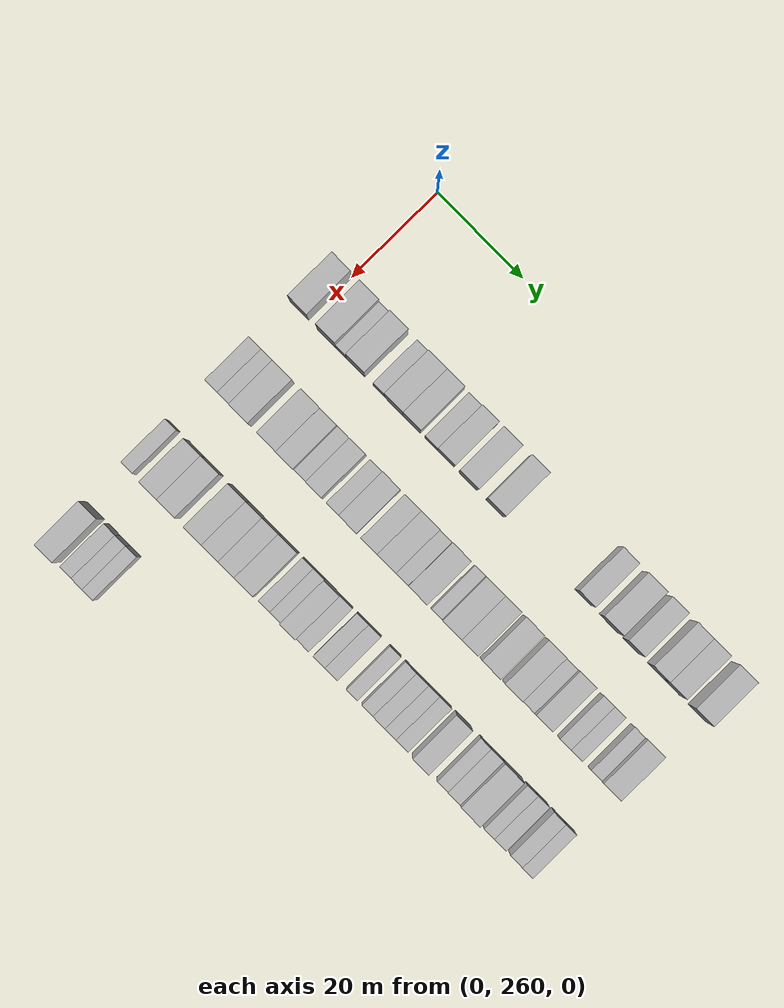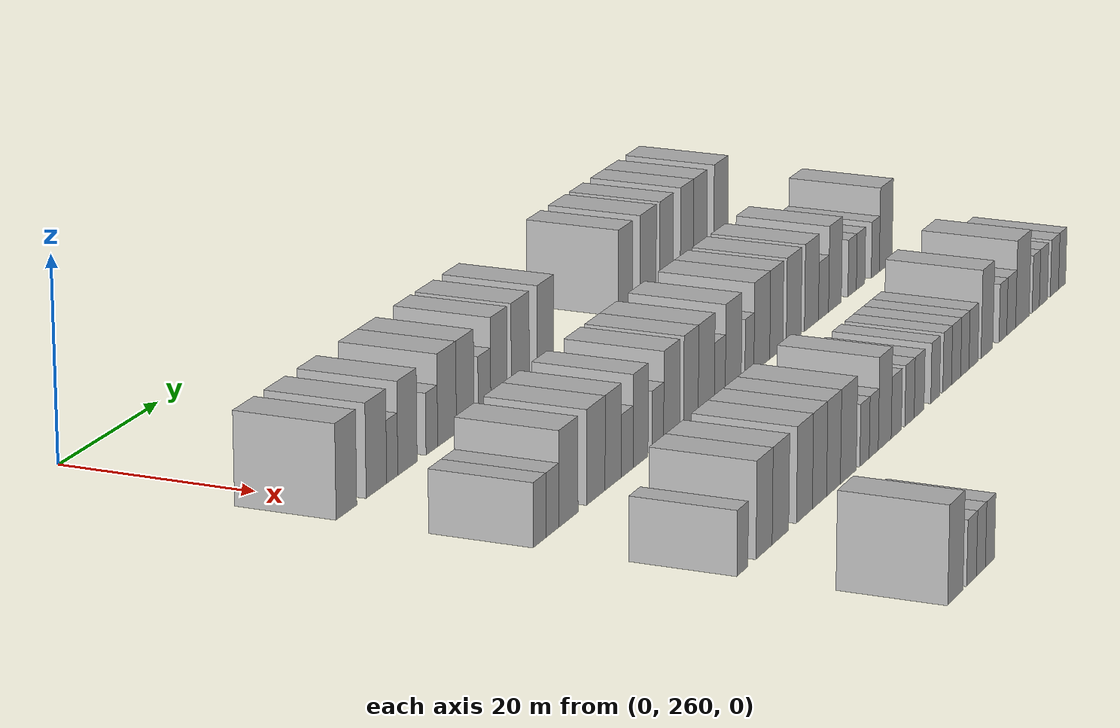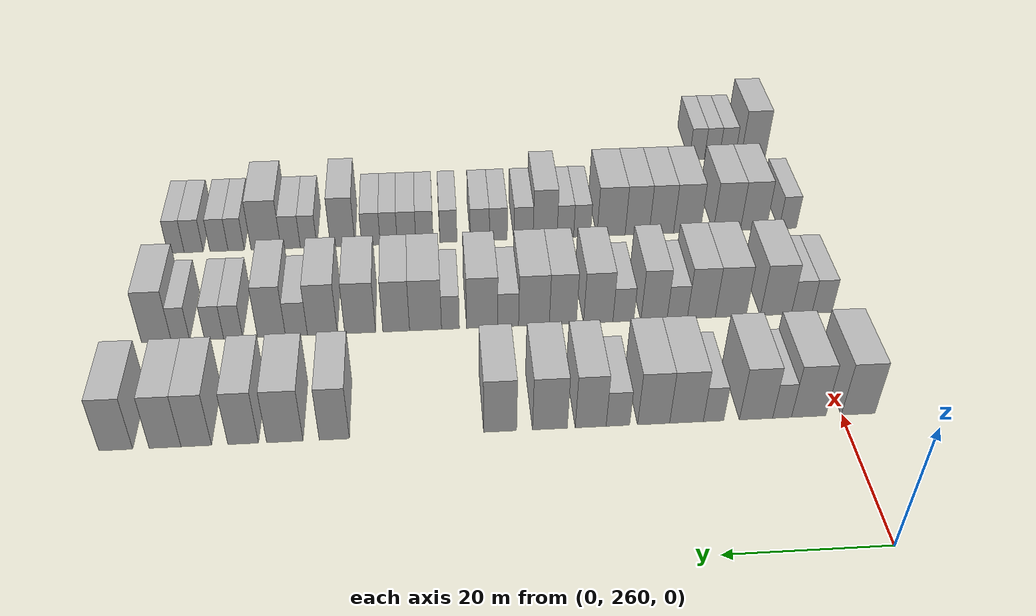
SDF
<sdf version="1.6">
 <world name="default">
  <model name="building_156">
   <static>1</static>
   <pose>25.0000 257.9217 0 0.000000 0.000000 0.000000</pose>
   <link name="link">
    <pose>0 0 4.50 0 0 0</pose>
    <collision name="collision"><geometry><box><size>10.0000 4.3431 9.0000</size></box></geometry></collision>
    <visual name="visual">
     <cast_shadows>0</cast_shadows>
     <geometry><box><size>10.0000 4.3431 9.0000</size></box></geometry>
     <material>
      <script>
       <uri>model://HANNAS_wall/materials/scripts</uri>
       <uri>model://HANNAS_wall/materials/textures</uri>
       <name>vrc/HANNAS_wall</name>
      </script>
     </material>
    </visual>
   </link>
  </model>
  <model name="building_157">
   <static>1</static>
   <pose>25.0000 264.3095 0 0.000000 0.000000 0.000000</pose>
   <link name="link">
    <pose>0 0 4.50 0 0 0</pose>
    <collision name="collision"><geometry><box><size>10.0000 4.4326 9.0000</size></box></geometry></collision>
    <visual name="visual">
     <cast_shadows>0</cast_shadows>
     <geometry><box><size>10.0000 4.4326 9.0000</size></box></geometry>
     <material>
      <script>
       <uri>model://HANNAS_wall/materials/scripts</uri>
       <uri>model://HANNAS_wall/materials/textures</uri>
       <name>vrc/HANNAS_wall</name>
      </script>
     </material>
    </visual>
   </link>
  </model>
  <model name="building_158">
   <static>1</static>
   <pose>25.0000 267.7391 0 0.000000 0.000000 0.000000</pose>
   <link name="link">
    <pose>0 0 3.00 0 0 0</pose>
    <collision name="collision"><geometry><box><size>10.0000 2.4265 6.0000</size></box></geometry></collision>
    <visual name="visual">
     <cast_shadows>0</cast_shadows>
     <geometry><box><size>10.0000 2.4265 6.0000</size></box></geometry>
     <material>
      <script>
       <uri>model://HANNAS_wall/materials/scripts</uri>
       <uri>model://HANNAS_wall/materials/textures</uri>
       <name>vrc/HANNAS_wall</name>
      </script>
     </material>
    </visual>
   </link>
  </model>
  <model name="building_159">
   <static>1</static>
   <pose>25.0000 271.0859 0 0.000000 0.000000 0.000000</pose>
   <link name="link">
    <pose>0 0 4.50 0 0 0</pose>
    <collision name="collision"><geometry><box><size>10.0000 4.2671 9.0000</size></box></geometry></collision>
    <visual name="visual">
     <cast_shadows>0</cast_shadows>
     <geometry><box><size>10.0000 4.2671 9.0000</size></box></geometry>
     <material>
      <script>
       <uri>model://HANNAS_wall/materials/scripts</uri>
       <uri>model://HANNAS_wall/materials/textures</uri>
       <name>vrc/HANNAS_wall</name>
      </script>
     </material>
    </visual>
   </link>
  </model>
  <model name="building_160">
   <static>1</static>
   <pose>25.0000 276.5340 0 0.000000 0.000000 0.000000</pose>
   <link name="link">
    <pose>0 0 3.00 0 0 0</pose>
    <collision name="collision"><geometry><box><size>10.0000 2.6290 6.0000</size></box></geometry></collision>
    <visual name="visual">
     <cast_shadows>0</cast_shadows>
     <geometry><box><size>10.0000 2.6290 6.0000</size></box></geometry>
     <material>
      <script>
       <uri>model://HANNAS_wall/materials/scripts</uri>
       <uri>model://HANNAS_wall/materials/textures</uri>
       <name>vrc/HANNAS_wall</name>
      </script>
     </material>
    </visual>
   </link>
  </model>
  <model name="building_161">
   <static>1</static>
   <pose>25.0000 279.9930 0 0.000000 0.000000 0.000000</pose>
   <link name="link">
    <pose>0 0 4.50 0 0 0</pose>
    <collision name="collision"><geometry><box><size>10.0000 4.2890 9.0000</size></box></geometry></collision>
    <visual name="visual">
     <cast_shadows>0</cast_shadows>
     <geometry><box><size>10.0000 4.2890 9.0000</size></box></geometry>
     <material>
      <script>
       <uri>model://HANNAS_wall/materials/scripts</uri>
       <uri>model://HANNAS_wall/materials/textures</uri>
       <name>vrc/HANNAS_wall</name>
      </script>
     </material>
    </visual>
   </link>
  </model>
  <model name="building_162">
   <static>1</static>
   <pose>25.0000 284.1789 0 0.000000 0.000000 0.000000</pose>
   <link name="link">
    <pose>0 0 4.50 0 0 0</pose>
    <collision name="collision"><geometry><box><size>10.0000 4.0828 9.0000</size></box></geometry></collision>
    <visual name="visual">
     <cast_shadows>0</cast_shadows>
     <geometry><box><size>10.0000 4.0828 9.0000</size></box></geometry>
     <material>
      <script>
       <uri>model://HANNAS_wall/materials/scripts</uri>
       <uri>model://HANNAS_wall/materials/textures</uri>
       <name>vrc/HANNAS_wall</name>
      </script>
     </material>
    </visual>
   </link>
  </model>
  <model name="building_163">
   <static>1</static>
   <pose>25.0000 288.7128 0 0.000000 0.000000 0.000000</pose>
   <link name="link">
    <pose>0 0 3.00 0 0 0</pose>
    <collision name="collision"><geometry><box><size>10.0000 2.9850 6.0000</size></box></geometry></collision>
    <visual name="visual">
     <cast_shadows>0</cast_shadows>
     <geometry><box><size>10.0000 2.9850 6.0000</size></box></geometry>
     <material>
      <script>
       <uri>model://HANNAS_wall/materials/scripts</uri>
       <uri>model://HANNAS_wall/materials/textures</uri>
       <name>vrc/HANNAS_wall</name>
      </script>
     </material>
    </visual>
   </link>
  </model>
  <model name="building_164">
   <static>1</static>
   <pose>25.0000 292.1604 0 0.000000 0.000000 0.000000</pose>
   <link name="link">
    <pose>0 0 4.50 0 0 0</pose>
    <collision name="collision"><geometry><box><size>10.0000 3.9103 9.0000</size></box></geometry></collision>
    <visual name="visual">
     <cast_shadows>0</cast_shadows>
     <geometry><box><size>10.0000 3.9103 9.0000</size></box></geometry>
     <material>
      <script>
       <uri>model://HANNAS_wall/materials/scripts</uri>
       <uri>model://HANNAS_wall/materials/textures</uri>
       <name>vrc/HANNAS_wall</name>
      </script>
     </material>
    </visual>
   </link>
  </model>
  <model name="building_165">
   <static>1</static>
   <pose>25.0000 297.3130 0 0.000000 0.000000 0.000000</pose>
   <link name="link">
    <pose>0 0 4.50 0 0 0</pose>
    <collision name="collision"><geometry><box><size>10.0000 4.3949 9.0000</size></box></geometry></collision>
    <visual name="visual">
     <cast_shadows>0</cast_shadows>
     <geometry><box><size>10.0000 4.3949 9.0000</size></box></geometry>
     <material>
      <script>
       <uri>model://HANNAS_wall/materials/scripts</uri>
       <uri>model://HANNAS_wall/materials/textures</uri>
       <name>vrc/HANNAS_wall</name>
      </script>
     </material>
    </visual>
   </link>
  </model>
  <model name="building_166">
   <static>1</static>
   <pose>25.0000 303.5803 0 0.000000 0.000000 0.000000</pose>
   <link name="link">
    <pose>0 0 4.50 0 0 0</pose>
    <collision name="collision"><geometry><box><size>10.0000 4.1397 9.0000</size></box></geometry></collision>
    <visual name="visual">
     <cast_shadows>0</cast_shadows>
     <geometry><box><size>10.0000 4.1397 9.0000</size></box></geometry>
     <material>
      <script>
       <uri>model://HANNAS_wall/materials/scripts</uri>
       <uri>model://HANNAS_wall/materials/textures</uri>
       <name>vrc/HANNAS_wall</name>
      </script>
     </material>
    </visual>
   </link>
  </model>
  <model name="building_167">
   <static>1</static>
   <pose>25.0000 324.2522 0 0.000000 0.000000 0.000000</pose>
   <link name="link">
    <pose>0 0 4.50 0 0 0</pose>
    <collision name="collision"><geometry><box><size>10.0000 3.7346 9.0000</size></box></geometry></collision>
    <visual name="visual">
     <cast_shadows>0</cast_shadows>
     <geometry><box><size>10.0000 3.7346 9.0000</size></box></geometry>
     <material>
      <script>
       <uri>model://HANNAS_wall/materials/scripts</uri>
       <uri>model://HANNAS_wall/materials/textures</uri>
       <name>vrc/HANNAS_wall</name>
      </script>
     </material>
    </visual>
   </link>
  </model>
  <model name="building_168">
   <static>1</static>
   <pose>25.0000 330.3652 0 0.000000 0.000000 0.000000</pose>
   <link name="link">
    <pose>0 0 4.50 0 0 0</pose>
    <collision name="collision"><geometry><box><size>10.0000 4.4914 9.0000</size></box></geometry></collision>
    <visual name="visual">
     <cast_shadows>0</cast_shadows>
     <geometry><box><size>10.0000 4.4914 9.0000</size></box></geometry>
     <material>
      <script>
       <uri>model://HANNAS_wall/materials/scripts</uri>
       <uri>model://HANNAS_wall/materials/textures</uri>
       <name>vrc/HANNAS_wall</name>
      </script>
     </material>
    </visual>
   </link>
  </model>
  <model name="building_169">
   <static>1</static>
   <pose>25.0000 335.4946 0 0.000000 0.000000 0.000000</pose>
   <link name="link">
    <pose>0 0 4.50 0 0 0</pose>
    <collision name="collision"><geometry><box><size>10.0000 3.7673 9.0000</size></box></geometry></collision>
    <visual name="visual">
     <cast_shadows>0</cast_shadows>
     <geometry><box><size>10.0000 3.7673 9.0000</size></box></geometry>
     <material>
      <script>
       <uri>model://HANNAS_wall/materials/scripts</uri>
       <uri>model://HANNAS_wall/materials/textures</uri>
       <name>vrc/HANNAS_wall</name>
      </script>
     </material>
    </visual>
   </link>
  </model>
  <model name="building_170">
   <static>1</static>
   <pose>25.0000 341.2450 0 0.000000 0.000000 0.000000</pose>
   <link name="link">
    <pose>0 0 4.50 0 0 0</pose>
    <collision name="collision"><geometry><box><size>10.0000 3.7335 9.0000</size></box></geometry></collision>
    <visual name="visual">
     <cast_shadows>0</cast_shadows>
     <geometry><box><size>10.0000 3.7335 9.0000</size></box></geometry>
     <material>
      <script>
       <uri>model://HANNAS_wall/materials/scripts</uri>
       <uri>model://HANNAS_wall/materials/textures</uri>
       <name>vrc/HANNAS_wall</name>
      </script>
     </material>
    </visual>
   </link>
  </model>
  <model name="building_171">
   <static>1</static>
   <pose>25.0000 345.0590 0 0.000000 0.000000 0.000000</pose>
   <link name="link">
    <pose>0 0 4.50 0 0 0</pose>
    <collision name="collision"><geometry><box><size>10.0000 3.8945 9.0000</size></box></geometry></collision>
    <visual name="visual">
     <cast_shadows>0</cast_shadows>
     <geometry><box><size>10.0000 3.8945 9.0000</size></box></geometry>
     <material>
      <script>
       <uri>model://HANNAS_wall/materials/scripts</uri>
       <uri>model://HANNAS_wall/materials/textures</uri>
       <name>vrc/HANNAS_wall</name>
      </script>
     </material>
    </visual>
   </link>
  </model>
  <model name="building_172">
   <static>1</static>
   <pose>25.0000 351.0654 0 0.000000 0.000000 0.000000</pose>
   <link name="link">
    <pose>0 0 4.50 0 0 0</pose>
    <collision name="collision"><geometry><box><size>10.0000 4.1183 9.0000</size></box></geometry></collision>
    <visual name="visual">
     <cast_shadows>0</cast_shadows>
     <geometry><box><size>10.0000 4.1183 9.0000</size></box></geometry>
     <material>
      <script>
       <uri>model://HANNAS_wall/materials/scripts</uri>
       <uri>model://HANNAS_wall/materials/textures</uri>
       <name>vrc/HANNAS_wall</name>
      </script>
     </material>
    </visual>
   </link>
  </model>
  <model name="building_323">
   <static>1</static>
   <pose>44.0000 257.0978 0 0.000000 0.000000 0.000000</pose>
   <link name="link">
    <pose>0 0 3.00 0 0 0</pose>
    <collision name="collision"><geometry><box><size>10.0000 2.8605 6.0000</size></box></geometry></collision>
    <visual name="visual">
     <cast_shadows>0</cast_shadows>
     <geometry><box><size>10.0000 2.8605 6.0000</size></box></geometry>
     <material>
      <script>
       <uri>model://HANNAS_wall/materials/scripts</uri>
       <uri>model://HANNAS_wall/materials/textures</uri>
       <name>vrc/HANNAS_wall</name>
      </script>
     </material>
    </visual>
   </link>
  </model>
  <model name="building_324">
   <static>1</static>
   <pose>44.0000 259.9847 0 0.000000 0.000000 0.000000</pose>
   <link name="link">
    <pose>0 0 3.00 0 0 0</pose>
    <collision name="collision"><geometry><box><size>10.0000 2.9132 6.0000</size></box></geometry></collision>
    <visual name="visual">
     <cast_shadows>0</cast_shadows>
     <geometry><box><size>10.0000 2.9132 6.0000</size></box></geometry>
     <material>
      <script>
       <uri>model://HANNAS_wall/materials/scripts</uri>
       <uri>model://HANNAS_wall/materials/textures</uri>
       <name>vrc/HANNAS_wall</name>
      </script>
     </material>
    </visual>
   </link>
  </model>
  <model name="building_325">
   <static>1</static>
   <pose>44.0000 263.6430 0 0.000000 0.000000 0.000000</pose>
   <link name="link">
    <pose>0 0 4.50 0 0 0</pose>
    <collision name="collision"><geometry><box><size>10.0000 4.4034 9.0000</size></box></geometry></collision>
    <visual name="visual">
     <cast_shadows>0</cast_shadows>
     <geometry><box><size>10.0000 4.4034 9.0000</size></box></geometry>
     <material>
      <script>
       <uri>model://HANNAS_wall/materials/scripts</uri>
       <uri>model://HANNAS_wall/materials/textures</uri>
       <name>vrc/HANNAS_wall</name>
      </script>
     </material>
    </visual>
   </link>
  </model>
  <model name="building_326">
   <static>1</static>
   <pose>44.0000 270.0319 0 0.000000 0.000000 0.000000</pose>
   <link name="link">
    <pose>0 0 4.50 0 0 0</pose>
    <collision name="collision"><geometry><box><size>10.0000 4.3744 9.0000</size></box></geometry></collision>
    <visual name="visual">
     <cast_shadows>0</cast_shadows>
     <geometry><box><size>10.0000 4.3744 9.0000</size></box></geometry>
     <material>
      <script>
       <uri>model://HANNAS_wall/materials/scripts</uri>
       <uri>model://HANNAS_wall/materials/textures</uri>
       <name>vrc/HANNAS_wall</name>
      </script>
     </material>
    </visual>
   </link>
  </model>
  <model name="building_327">
   <static>1</static>
   <pose>44.0000 274.1788 0 0.000000 0.000000 0.000000</pose>
   <link name="link">
    <pose>0 0 4.50 0 0 0</pose>
    <collision name="collision"><geometry><box><size>10.0000 3.9193 9.0000</size></box></geometry></collision>
    <visual name="visual">
     <cast_shadows>0</cast_shadows>
     <geometry><box><size>10.0000 3.9193 9.0000</size></box></geometry>
     <material>
      <script>
       <uri>model://HANNAS_wall/materials/scripts</uri>
       <uri>model://HANNAS_wall/materials/textures</uri>
       <name>vrc/HANNAS_wall</name>
      </script>
     </material>
    </visual>
   </link>
  </model>
  <model name="building_328">
   <static>1</static>
   <pose>44.0000 277.5630 0 0.000000 0.000000 0.000000</pose>
   <link name="link">
    <pose>0 0 3.00 0 0 0</pose>
    <collision name="collision"><geometry><box><size>10.0000 2.8491 6.0000</size></box></geometry></collision>
    <visual name="visual">
     <cast_shadows>0</cast_shadows>
     <geometry><box><size>10.0000 2.8491 6.0000</size></box></geometry>
     <material>
      <script>
       <uri>model://HANNAS_wall/materials/scripts</uri>
       <uri>model://HANNAS_wall/materials/textures</uri>
       <name>vrc/HANNAS_wall</name>
      </script>
     </material>
    </visual>
   </link>
  </model>
  <model name="building_329">
   <static>1</static>
   <pose>44.0000 280.8225 0 0.000000 0.000000 0.000000</pose>
   <link name="link">
    <pose>0 0 4.50 0 0 0</pose>
    <collision name="collision"><geometry><box><size>10.0000 3.6697 9.0000</size></box></geometry></collision>
    <visual name="visual">
     <cast_shadows>0</cast_shadows>
     <geometry><box><size>10.0000 3.6697 9.0000</size></box></geometry>
     <material>
      <script>
       <uri>model://HANNAS_wall/materials/scripts</uri>
       <uri>model://HANNAS_wall/materials/textures</uri>
       <name>vrc/HANNAS_wall</name>
      </script>
     </material>
    </visual>
   </link>
  </model>
  <model name="building_330">
   <static>1</static>
   <pose>44.0000 285.1174 0 0.000000 0.000000 0.000000</pose>
   <link name="link">
    <pose>0 0 3.00 0 0 0</pose>
    <collision name="collision"><geometry><box><size>10.0000 2.9201 6.0000</size></box></geometry></collision>
    <visual name="visual">
     <cast_shadows>0</cast_shadows>
     <geometry><box><size>10.0000 2.9201 6.0000</size></box></geometry>
     <material>
      <script>
       <uri>model://HANNAS_wall/materials/scripts</uri>
       <uri>model://HANNAS_wall/materials/textures</uri>
       <name>vrc/HANNAS_wall</name>
      </script>
     </material>
    </visual>
   </link>
  </model>
  <model name="building_331">
   <static>1</static>
   <pose>44.0000 288.6236 0 0.000000 0.000000 0.000000</pose>
   <link name="link">
    <pose>0 0 4.50 0 0 0</pose>
    <collision name="collision"><geometry><box><size>10.0000 4.0924 9.0000</size></box></geometry></collision>
    <visual name="visual">
     <cast_shadows>0</cast_shadows>
     <geometry><box><size>10.0000 4.0924 9.0000</size></box></geometry>
     <material>
      <script>
       <uri>model://HANNAS_wall/materials/scripts</uri>
       <uri>model://HANNAS_wall/materials/textures</uri>
       <name>vrc/HANNAS_wall</name>
      </script>
     </material>
    </visual>
   </link>
  </model>
  <model name="building_332">
   <static>1</static>
   <pose>44.0000 293.5521 0 0.000000 0.000000 0.000000</pose>
   <link name="link">
    <pose>0 0 4.50 0 0 0</pose>
    <collision name="collision"><geometry><box><size>10.0000 3.7646 9.0000</size></box></geometry></collision>
    <visual name="visual">
     <cast_shadows>0</cast_shadows>
     <geometry><box><size>10.0000 3.7646 9.0000</size></box></geometry>
     <material>
      <script>
       <uri>model://HANNAS_wall/materials/scripts</uri>
       <uri>model://HANNAS_wall/materials/textures</uri>
       <name>vrc/HANNAS_wall</name>
      </script>
     </material>
    </visual>
   </link>
  </model>
  <model name="building_333">
   <static>1</static>
   <pose>44.0000 297.5683 0 0.000000 0.000000 0.000000</pose>
   <link name="link">
    <pose>0 0 4.50 0 0 0</pose>
    <collision name="collision"><geometry><box><size>10.0000 4.2679 9.0000</size></box></geometry></collision>
    <visual name="visual">
     <cast_shadows>0</cast_shadows>
     <geometry><box><size>10.0000 4.2679 9.0000</size></box></geometry>
     <material>
      <script>
       <uri>model://HANNAS_wall/materials/scripts</uri>
       <uri>model://HANNAS_wall/materials/textures</uri>
       <name>vrc/HANNAS_wall</name>
      </script>
     </material>
    </visual>
   </link>
  </model>
  <model name="building_334">
   <static>1</static>
   <pose>44.0000 301.1412 0 0.000000 0.000000 0.000000</pose>
   <link name="link">
    <pose>0 0 3.00 0 0 0</pose>
    <collision name="collision"><geometry><box><size>10.0000 2.8778 6.0000</size></box></geometry></collision>
    <visual name="visual">
     <cast_shadows>0</cast_shadows>
     <geometry><box><size>10.0000 2.8778 6.0000</size></box></geometry>
     <material>
      <script>
       <uri>model://HANNAS_wall/materials/scripts</uri>
       <uri>model://HANNAS_wall/materials/textures</uri>
       <name>vrc/HANNAS_wall</name>
      </script>
     </material>
    </visual>
   </link>
  </model>
  <model name="building_335">
   <static>1</static>
   <pose>44.0000 304.7268 0 0.000000 0.000000 0.000000</pose>
   <link name="link">
    <pose>0 0 4.50 0 0 0</pose>
    <collision name="collision"><geometry><box><size>10.0000 4.2934 9.0000</size></box></geometry></collision>
    <visual name="visual">
     <cast_shadows>0</cast_shadows>
     <geometry><box><size>10.0000 4.2934 9.0000</size></box></geometry>
     <material>
      <script>
       <uri>model://HANNAS_wall/materials/scripts</uri>
       <uri>model://HANNAS_wall/materials/textures</uri>
       <name>vrc/HANNAS_wall</name>
      </script>
     </material>
    </visual>
   </link>
  </model>
  <model name="building_336">
   <static>1</static>
   <pose>44.0000 309.1063 0 0.000000 0.000000 0.000000</pose>
   <link name="link">
    <pose>0 0 3.00 0 0 0</pose>
    <collision name="collision"><geometry><box><size>10.0000 2.4656 6.0000</size></box></geometry></collision>
    <visual name="visual">
     <cast_shadows>0</cast_shadows>
     <geometry><box><size>10.0000 2.4656 6.0000</size></box></geometry>
     <material>
      <script>
       <uri>model://HANNAS_wall/materials/scripts</uri>
       <uri>model://HANNAS_wall/materials/textures</uri>
       <name>vrc/HANNAS_wall</name>
      </script>
     </material>
    </visual>
   </link>
  </model>
  <model name="building_337">
   <static>1</static>
   <pose>44.0000 312.5349 0 0.000000 0.000000 0.000000</pose>
   <link name="link">
    <pose>0 0 4.50 0 0 0</pose>
    <collision name="collision"><geometry><box><size>10.0000 4.3915 9.0000</size></box></geometry></collision>
    <visual name="visual">
     <cast_shadows>0</cast_shadows>
     <geometry><box><size>10.0000 4.3915 9.0000</size></box></geometry>
     <material>
      <script>
       <uri>model://HANNAS_wall/materials/scripts</uri>
       <uri>model://HANNAS_wall/materials/textures</uri>
       <name>vrc/HANNAS_wall</name>
      </script>
     </material>
    </visual>
   </link>
  </model>
  <model name="building_338">
   <static>1</static>
   <pose>44.0000 316.5642 0 0.000000 0.000000 0.000000</pose>
   <link name="link">
    <pose>0 0 4.50 0 0 0</pose>
    <collision name="collision"><geometry><box><size>10.0000 3.6671 9.0000</size></box></geometry></collision>
    <visual name="visual">
     <cast_shadows>0</cast_shadows>
     <geometry><box><size>10.0000 3.6671 9.0000</size></box></geometry>
     <material>
      <script>
       <uri>model://HANNAS_wall/materials/scripts</uri>
       <uri>model://HANNAS_wall/materials/textures</uri>
       <name>vrc/HANNAS_wall</name>
      </script>
     </material>
    </visual>
   </link>
  </model>
  <model name="building_339">
   <static>1</static>
   <pose>44.0000 321.5037 0 0.000000 0.000000 0.000000</pose>
   <link name="link">
    <pose>0 0 4.50 0 0 0</pose>
    <collision name="collision"><geometry><box><size>10.0000 4.2120 9.0000</size></box></geometry></collision>
    <visual name="visual">
     <cast_shadows>0</cast_shadows>
     <geometry><box><size>10.0000 4.2120 9.0000</size></box></geometry>
     <material>
      <script>
       <uri>model://HANNAS_wall/materials/scripts</uri>
       <uri>model://HANNAS_wall/materials/textures</uri>
       <name>vrc/HANNAS_wall</name>
      </script>
     </material>
    </visual>
   </link>
  </model>
  <model name="building_340">
   <static>1</static>
   <pose>44.0000 326.6484 0 0.000000 0.000000 0.000000</pose>
   <link name="link">
    <pose>0 0 4.50 0 0 0</pose>
    <collision name="collision"><geometry><box><size>10.0000 4.0774 9.0000</size></box></geometry></collision>
    <visual name="visual">
     <cast_shadows>0</cast_shadows>
     <geometry><box><size>10.0000 4.0774 9.0000</size></box></geometry>
     <material>
      <script>
       <uri>model://HANNAS_wall/materials/scripts</uri>
       <uri>model://HANNAS_wall/materials/textures</uri>
       <name>vrc/HANNAS_wall</name>
      </script>
     </material>
    </visual>
   </link>
  </model>
  <model name="building_341">
   <static>1</static>
   <pose>44.0000 330.1806 0 0.000000 0.000000 0.000000</pose>
   <link name="link">
    <pose>0 0 3.00 0 0 0</pose>
    <collision name="collision"><geometry><box><size>10.0000 2.9869 6.0000</size></box></geometry></collision>
    <visual name="visual">
     <cast_shadows>0</cast_shadows>
     <geometry><box><size>10.0000 2.9869 6.0000</size></box></geometry>
     <material>
      <script>
       <uri>model://HANNAS_wall/materials/scripts</uri>
       <uri>model://HANNAS_wall/materials/textures</uri>
       <name>vrc/HANNAS_wall</name>
      </script>
     </material>
    </visual>
   </link>
  </model>
  <model name="building_342">
   <static>1</static>
   <pose>44.0000 333.5824 0 0.000000 0.000000 0.000000</pose>
   <link name="link">
    <pose>0 0 4.50 0 0 0</pose>
    <collision name="collision"><geometry><box><size>10.0000 3.8167 9.0000</size></box></geometry></collision>
    <visual name="visual">
     <cast_shadows>0</cast_shadows>
     <geometry><box><size>10.0000 3.8167 9.0000</size></box></geometry>
     <material>
      <script>
       <uri>model://HANNAS_wall/materials/scripts</uri>
       <uri>model://HANNAS_wall/materials/textures</uri>
       <name>vrc/HANNAS_wall</name>
      </script>
     </material>
    </visual>
   </link>
  </model>
  <model name="building_343">
   <static>1</static>
   <pose>44.0000 338.7766 0 0.000000 0.000000 0.000000</pose>
   <link name="link">
    <pose>0 0 3.00 0 0 0</pose>
    <collision name="collision"><geometry><box><size>10.0000 2.5716 6.0000</size></box></geometry></collision>
    <visual name="visual">
     <cast_shadows>0</cast_shadows>
     <geometry><box><size>10.0000 2.5716 6.0000</size></box></geometry>
     <material>
      <script>
       <uri>model://HANNAS_wall/materials/scripts</uri>
       <uri>model://HANNAS_wall/materials/textures</uri>
       <name>vrc/HANNAS_wall</name>
      </script>
     </material>
    </visual>
   </link>
  </model>
  <model name="building_344">
   <static>1</static>
   <pose>44.0000 341.3563 0 0.000000 0.000000 0.000000</pose>
   <link name="link">
    <pose>0 0 3.00 0 0 0</pose>
    <collision name="collision"><geometry><box><size>10.0000 2.5878 6.0000</size></box></geometry></collision>
    <visual name="visual">
     <cast_shadows>0</cast_shadows>
     <geometry><box><size>10.0000 2.5878 6.0000</size></box></geometry>
     <material>
      <script>
       <uri>model://HANNAS_wall/materials/scripts</uri>
       <uri>model://HANNAS_wall/materials/textures</uri>
       <name>vrc/HANNAS_wall</name>
      </script>
     </material>
    </visual>
   </link>
  </model>
  <model name="building_345">
   <static>1</static>
   <pose>44.0000 345.8887 0 0.000000 0.000000 0.000000</pose>
   <link name="link">
    <pose>0 0 3.00 0 0 0</pose>
    <collision name="collision"><geometry><box><size>10.0000 2.4772 6.0000</size></box></geometry></collision>
    <visual name="visual">
     <cast_shadows>0</cast_shadows>
     <geometry><box><size>10.0000 2.4772 6.0000</size></box></geometry>
     <material>
      <script>
       <uri>model://HANNAS_wall/materials/scripts</uri>
       <uri>model://HANNAS_wall/materials/textures</uri>
       <name>vrc/HANNAS_wall</name>
      </script>
     </material>
    </visual>
   </link>
  </model>
  <model name="building_346">
   <static>1</static>
   <pose>44.0000 349.1364 0 0.000000 0.000000 0.000000</pose>
   <link name="link">
    <pose>0 0 4.50 0 0 0</pose>
    <collision name="collision"><geometry><box><size>10.0000 4.0180 9.0000</size></box></geometry></collision>
    <visual name="visual">
     <cast_shadows>0</cast_shadows>
     <geometry><box><size>10.0000 4.0180 9.0000</size></box></geometry>
     <material>
      <script>
       <uri>model://HANNAS_wall/materials/scripts</uri>
       <uri>model://HANNAS_wall/materials/textures</uri>
       <name>vrc/HANNAS_wall</name>
      </script>
     </material>
    </visual>
   </link>
  </model>
  <model name="building_505">
   <static>1</static>
   <pose>63.0000 256.8940 0 0.000000 0.000000 0.000000</pose>
   <link name="link">
    <pose>0 0 3.00 0 0 0</pose>
    <collision name="collision"><geometry><box><size>10.0000 2.6488 6.0000</size></box></geometry></collision>
    <visual name="visual">
     <cast_shadows>0</cast_shadows>
     <geometry><box><size>10.0000 2.6488 6.0000</size></box></geometry>
     <material>
      <script>
       <uri>model://HANNAS_wall/materials/scripts</uri>
       <uri>model://HANNAS_wall/materials/textures</uri>
       <name>vrc/HANNAS_wall</name>
      </script>
     </material>
    </visual>
   </link>
  </model>
  <model name="building_506">
   <static>1</static>
   <pose>63.0000 262.2229 0 0.000000 0.000000 0.000000</pose>
   <link name="link">
    <pose>0 0 4.50 0 0 0</pose>
    <collision name="collision"><geometry><box><size>10.0000 4.0091 9.0000</size></box></geometry></collision>
    <visual name="visual">
     <cast_shadows>0</cast_shadows>
     <geometry><box><size>10.0000 4.0091 9.0000</size></box></geometry>
     <material>
      <script>
       <uri>model://HANNAS_wall/materials/scripts</uri>
       <uri>model://HANNAS_wall/materials/textures</uri>
       <name>vrc/HANNAS_wall</name>
      </script>
     </material>
    </visual>
   </link>
  </model>
  <model name="building_507">
   <static>1</static>
   <pose>63.0000 266.3112 0 0.000000 0.000000 0.000000</pose>
   <link name="link">
    <pose>0 0 4.50 0 0 0</pose>
    <collision name="collision"><geometry><box><size>10.0000 4.1674 9.0000</size></box></geometry></collision>
    <visual name="visual">
     <cast_shadows>0</cast_shadows>
     <geometry><box><size>10.0000 4.1674 9.0000</size></box></geometry>
     <material>
      <script>
       <uri>model://HANNAS_wall/materials/scripts</uri>
       <uri>model://HANNAS_wall/materials/textures</uri>
       <name>vrc/HANNAS_wall</name>
      </script>
     </material>
    </visual>
   </link>
  </model>
  <model name="building_508">
   <static>1</static>
   <pose>63.0000 272.4533 0 0.000000 0.000000 0.000000</pose>
   <link name="link">
    <pose>0 0 4.50 0 0 0</pose>
    <collision name="collision"><geometry><box><size>10.0000 4.1169 9.0000</size></box></geometry></collision>
    <visual name="visual">
     <cast_shadows>0</cast_shadows>
     <geometry><box><size>10.0000 4.1169 9.0000</size></box></geometry>
     <material>
      <script>
       <uri>model://HANNAS_wall/materials/scripts</uri>
       <uri>model://HANNAS_wall/materials/textures</uri>
       <name>vrc/HANNAS_wall</name>
      </script>
     </material>
    </visual>
   </link>
  </model>
  <model name="building_509">
   <static>1</static>
   <pose>63.0000 276.3806 0 0.000000 0.000000 0.000000</pose>
   <link name="link">
    <pose>0 0 4.50 0 0 0</pose>
    <collision name="collision"><geometry><box><size>10.0000 3.7378 9.0000</size></box></geometry></collision>
    <visual name="visual">
     <cast_shadows>0</cast_shadows>
     <geometry><box><size>10.0000 3.7378 9.0000</size></box></geometry>
     <material>
      <script>
       <uri>model://HANNAS_wall/materials/scripts</uri>
       <uri>model://HANNAS_wall/materials/textures</uri>
       <name>vrc/HANNAS_wall</name>
      </script>
     </material>
    </visual>
   </link>
  </model>
  <model name="building_510">
   <static>1</static>
   <pose>63.0000 280.0907 0 0.000000 0.000000 0.000000</pose>
   <link name="link">
    <pose>0 0 4.50 0 0 0</pose>
    <collision name="collision"><geometry><box><size>10.0000 3.6824 9.0000</size></box></geometry></collision>
    <visual name="visual">
     <cast_shadows>0</cast_shadows>
     <geometry><box><size>10.0000 3.6824 9.0000</size></box></geometry>
     <material>
      <script>
       <uri>model://HANNAS_wall/materials/scripts</uri>
       <uri>model://HANNAS_wall/materials/textures</uri>
       <name>vrc/HANNAS_wall</name>
      </script>
     </material>
    </visual>
   </link>
  </model>
  <model name="building_511">
   <static>1</static>
   <pose>63.0000 284.0763 0 0.000000 0.000000 0.000000</pose>
   <link name="link">
    <pose>0 0 4.50 0 0 0</pose>
    <collision name="collision"><geometry><box><size>10.0000 4.2889 9.0000</size></box></geometry></collision>
    <visual name="visual">
     <cast_shadows>0</cast_shadows>
     <geometry><box><size>10.0000 4.2889 9.0000</size></box></geometry>
     <material>
      <script>
       <uri>model://HANNAS_wall/materials/scripts</uri>
       <uri>model://HANNAS_wall/materials/textures</uri>
       <name>vrc/HANNAS_wall</name>
      </script>
     </material>
    </visual>
   </link>
  </model>
  <model name="building_512">
   <static>1</static>
   <pose>63.0000 288.5037 0 0.000000 0.000000 0.000000</pose>
   <link name="link">
    <pose>0 0 3.00 0 0 0</pose>
    <collision name="collision"><geometry><box><size>10.0000 2.5658 6.0000</size></box></geometry></collision>
    <visual name="visual">
     <cast_shadows>0</cast_shadows>
     <geometry><box><size>10.0000 2.5658 6.0000</size></box></geometry>
     <material>
      <script>
       <uri>model://HANNAS_wall/materials/scripts</uri>
       <uri>model://HANNAS_wall/materials/textures</uri>
       <name>vrc/HANNAS_wall</name>
      </script>
     </material>
    </visual>
   </link>
  </model>
  <model name="building_513">
   <static>1</static>
   <pose>63.0000 291.0500 0 0.000000 0.000000 0.000000</pose>
   <link name="link">
    <pose>0 0 3.00 0 0 0</pose>
    <collision name="collision"><geometry><box><size>10.0000 2.5268 6.0000</size></box></geometry></collision>
    <visual name="visual">
     <cast_shadows>0</cast_shadows>
     <geometry><box><size>10.0000 2.5268 6.0000</size></box></geometry>
     <material>
      <script>
       <uri>model://HANNAS_wall/materials/scripts</uri>
       <uri>model://HANNAS_wall/materials/textures</uri>
       <name>vrc/HANNAS_wall</name>
      </script>
     </material>
    </visual>
   </link>
  </model>
  <model name="building_514">
   <static>1</static>
   <pose>63.0000 294.1328 0 0.000000 0.000000 0.000000</pose>
   <link name="link">
    <pose>0 0 4.50 0 0 0</pose>
    <collision name="collision"><geometry><box><size>10.0000 3.6389 9.0000</size></box></geometry></collision>
    <visual name="visual">
     <cast_shadows>0</cast_shadows>
     <geometry><box><size>10.0000 3.6389 9.0000</size></box></geometry>
     <material>
      <script>
       <uri>model://HANNAS_wall/materials/scripts</uri>
       <uri>model://HANNAS_wall/materials/textures</uri>
       <name>vrc/HANNAS_wall</name>
      </script>
     </material>
    </visual>
   </link>
  </model>
  <model name="building_515">
   <static>1</static>
   <pose>63.0000 297.4019 0 0.000000 0.000000 0.000000</pose>
   <link name="link">
    <pose>0 0 3.00 0 0 0</pose>
    <collision name="collision"><geometry><box><size>10.0000 2.8992 6.0000</size></box></geometry></collision>
    <visual name="visual">
     <cast_shadows>0</cast_shadows>
     <geometry><box><size>10.0000 2.8992 6.0000</size></box></geometry>
     <material>
      <script>
       <uri>model://HANNAS_wall/materials/scripts</uri>
       <uri>model://HANNAS_wall/materials/textures</uri>
       <name>vrc/HANNAS_wall</name>
      </script>
     </material>
    </visual>
   </link>
  </model>
  <model name="building_516">
   <static>1</static>
   <pose>63.0000 301.2016 0 0.000000 0.000000 0.000000</pose>
   <link name="link">
    <pose>0 0 3.00 0 0 0</pose>
    <collision name="collision"><geometry><box><size>10.0000 2.7003 6.0000</size></box></geometry></collision>
    <visual name="visual">
     <cast_shadows>0</cast_shadows>
     <geometry><box><size>10.0000 2.7003 6.0000</size></box></geometry>
     <material>
      <script>
       <uri>model://HANNAS_wall/materials/scripts</uri>
       <uri>model://HANNAS_wall/materials/textures</uri>
       <name>vrc/HANNAS_wall</name>
      </script>
     </material>
    </visual>
   </link>
  </model>
  <model name="building_517">
   <static>1</static>
   <pose>63.0000 303.9911 0 0.000000 0.000000 0.000000</pose>
   <link name="link">
    <pose>0 0 3.00 0 0 0</pose>
    <collision name="collision"><geometry><box><size>10.0000 2.8787 6.0000</size></box></geometry></collision>
    <visual name="visual">
     <cast_shadows>0</cast_shadows>
     <geometry><box><size>10.0000 2.8787 6.0000</size></box></geometry>
     <material>
      <script>
       <uri>model://HANNAS_wall/materials/scripts</uri>
       <uri>model://HANNAS_wall/materials/textures</uri>
       <name>vrc/HANNAS_wall</name>
      </script>
     </material>
    </visual>
   </link>
  </model>
  <model name="building_518">
   <static>1</static>
   <pose>63.0000 308.7196 0 0.000000 0.000000 0.000000</pose>
   <link name="link">
    <pose>0 0 3.00 0 0 0</pose>
    <collision name="collision"><geometry><box><size>10.0000 2.5782 6.0000</size></box></geometry></collision>
    <visual name="visual">
     <cast_shadows>0</cast_shadows>
     <geometry><box><size>10.0000 2.5782 6.0000</size></box></geometry>
     <material>
      <script>
       <uri>model://HANNAS_wall/materials/scripts</uri>
       <uri>model://HANNAS_wall/materials/textures</uri>
       <name>vrc/HANNAS_wall</name>
      </script>
     </material>
    </visual>
   </link>
  </model>
  <model name="building_519">
   <static>1</static>
   <pose>63.0000 312.3083 0 0.000000 0.000000 0.000000</pose>
   <link name="link">
    <pose>0 0 3.00 0 0 0</pose>
    <collision name="collision"><geometry><box><size>10.0000 2.5994 6.0000</size></box></geometry></collision>
    <visual name="visual">
     <cast_shadows>0</cast_shadows>
     <geometry><box><size>10.0000 2.5994 6.0000</size></box></geometry>
     <material>
      <script>
       <uri>model://HANNAS_wall/materials/scripts</uri>
       <uri>model://HANNAS_wall/materials/textures</uri>
       <name>vrc/HANNAS_wall</name>
      </script>
     </material>
    </visual>
   </link>
  </model>
  <model name="building_520">
   <static>1</static>
   <pose>63.0000 315.0029 0 0.000000 0.000000 0.000000</pose>
   <link name="link">
    <pose>0 0 3.00 0 0 0</pose>
    <collision name="collision"><geometry><box><size>10.0000 2.7896 6.0000</size></box></geometry></collision>
    <visual name="visual">
     <cast_shadows>0</cast_shadows>
     <geometry><box><size>10.0000 2.7896 6.0000</size></box></geometry>
     <material>
      <script>
       <uri>model://HANNAS_wall/materials/scripts</uri>
       <uri>model://HANNAS_wall/materials/textures</uri>
       <name>vrc/HANNAS_wall</name>
      </script>
     </material>
    </visual>
   </link>
  </model>
  <model name="building_521">
   <static>1</static>
   <pose>63.0000 317.6730 0 0.000000 0.000000 0.000000</pose>
   <link name="link">
    <pose>0 0 3.00 0 0 0</pose>
    <collision name="collision"><geometry><box><size>10.0000 2.5507 6.0000</size></box></geometry></collision>
    <visual name="visual">
     <cast_shadows>0</cast_shadows>
     <geometry><box><size>10.0000 2.5507 6.0000</size></box></geometry>
     <material>
      <script>
       <uri>model://HANNAS_wall/materials/scripts</uri>
       <uri>model://HANNAS_wall/materials/textures</uri>
       <name>vrc/HANNAS_wall</name>
      </script>
     </material>
    </visual>
   </link>
  </model>
  <model name="building_522">
   <static>1</static>
   <pose>63.0000 320.3348 0 0.000000 0.000000 0.000000</pose>
   <link name="link">
    <pose>0 0 3.00 0 0 0</pose>
    <collision name="collision"><geometry><box><size>10.0000 2.7729 6.0000</size></box></geometry></collision>
    <visual name="visual">
     <cast_shadows>0</cast_shadows>
     <geometry><box><size>10.0000 2.7729 6.0000</size></box></geometry>
     <material>
      <script>
       <uri>model://HANNAS_wall/materials/scripts</uri>
       <uri>model://HANNAS_wall/materials/textures</uri>
       <name>vrc/HANNAS_wall</name>
      </script>
     </material>
    </visual>
   </link>
  </model>
  <model name="building_523">
   <static>1</static>
   <pose>63.0000 324.5597 0 0.000000 0.000000 0.000000</pose>
   <link name="link">
    <pose>0 0 4.50 0 0 0</pose>
    <collision name="collision"><geometry><box><size>10.0000 3.6769 9.0000</size></box></geometry></collision>
    <visual name="visual">
     <cast_shadows>0</cast_shadows>
     <geometry><box><size>10.0000 3.6769 9.0000</size></box></geometry>
     <material>
      <script>
       <uri>model://HANNAS_wall/materials/scripts</uri>
       <uri>model://HANNAS_wall/materials/textures</uri>
       <name>vrc/HANNAS_wall</name>
      </script>
     </material>
    </visual>
   </link>
  </model>
  <model name="building_524">
   <static>1</static>
   <pose>63.0000 329.6350 0 0.000000 0.000000 0.000000</pose>
   <link name="link">
    <pose>0 0 3.00 0 0 0</pose>
    <collision name="collision"><geometry><box><size>10.0000 2.4735 6.0000</size></box></geometry></collision>
    <visual name="visual">
     <cast_shadows>0</cast_shadows>
     <geometry><box><size>10.0000 2.4735 6.0000</size></box></geometry>
     <material>
      <script>
       <uri>model://HANNAS_wall/materials/scripts</uri>
       <uri>model://HANNAS_wall/materials/textures</uri>
       <name>vrc/HANNAS_wall</name>
      </script>
     </material>
    </visual>
   </link>
  </model>
  <model name="building_525">
   <static>1</static>
   <pose>63.0000 332.3158 0 0.000000 0.000000 0.000000</pose>
   <link name="link">
    <pose>0 0 3.00 0 0 0</pose>
    <collision name="collision"><geometry><box><size>10.0000 2.8882 6.0000</size></box></geometry></collision>
    <visual name="visual">
     <cast_shadows>0</cast_shadows>
     <geometry><box><size>10.0000 2.8882 6.0000</size></box></geometry>
     <material>
      <script>
       <uri>model://HANNAS_wall/materials/scripts</uri>
       <uri>model://HANNAS_wall/materials/textures</uri>
       <name>vrc/HANNAS_wall</name>
      </script>
     </material>
    </visual>
   </link>
  </model>
  <model name="building_526">
   <static>1</static>
   <pose>63.0000 335.9708 0 0.000000 0.000000 0.000000</pose>
   <link name="link">
    <pose>0 0 4.50 0 0 0</pose>
    <collision name="collision"><geometry><box><size>10.0000 4.4217 9.0000</size></box></geometry></collision>
    <visual name="visual">
     <cast_shadows>0</cast_shadows>
     <geometry><box><size>10.0000 4.4217 9.0000</size></box></geometry>
     <material>
      <script>
       <uri>model://HANNAS_wall/materials/scripts</uri>
       <uri>model://HANNAS_wall/materials/textures</uri>
       <name>vrc/HANNAS_wall</name>
      </script>
     </material>
    </visual>
   </link>
  </model>
  <model name="building_527">
   <static>1</static>
   <pose>63.0000 340.3817 0 0.000000 0.000000 0.000000</pose>
   <link name="link">
    <pose>0 0 3.00 0 0 0</pose>
    <collision name="collision"><geometry><box><size>10.0000 2.4000 6.0000</size></box></geometry></collision>
    <visual name="visual">
     <cast_shadows>0</cast_shadows>
     <geometry><box><size>10.0000 2.4000 6.0000</size></box></geometry>
     <material>
      <script>
       <uri>model://HANNAS_wall/materials/scripts</uri>
       <uri>model://HANNAS_wall/materials/textures</uri>
       <name>vrc/HANNAS_wall</name>
      </script>
     </material>
    </visual>
   </link>
  </model>
  <model name="building_528">
   <static>1</static>
   <pose>63.0000 342.9223 0 0.000000 0.000000 0.000000</pose>
   <link name="link">
    <pose>0 0 3.00 0 0 0</pose>
    <collision name="collision"><geometry><box><size>10.0000 2.6811 6.0000</size></box></geometry></collision>
    <visual name="visual">
     <cast_shadows>0</cast_shadows>
     <geometry><box><size>10.0000 2.6811 6.0000</size></box></geometry>
     <material>
      <script>
       <uri>model://HANNAS_wall/materials/scripts</uri>
       <uri>model://HANNAS_wall/materials/textures</uri>
       <name>vrc/HANNAS_wall</name>
      </script>
     </material>
    </visual>
   </link>
  </model>
  <model name="building_529">
   <static>1</static>
   <pose>63.0000 346.6603 0 0.000000 0.000000 0.000000</pose>
   <link name="link">
    <pose>0 0 3.00 0 0 0</pose>
    <collision name="collision"><geometry><box><size>10.0000 2.7950 6.0000</size></box></geometry></collision>
    <visual name="visual">
     <cast_shadows>0</cast_shadows>
     <geometry><box><size>10.0000 2.7950 6.0000</size></box></geometry>
     <material>
      <script>
       <uri>model://HANNAS_wall/materials/scripts</uri>
       <uri>model://HANNAS_wall/materials/textures</uri>
       <name>vrc/HANNAS_wall</name>
      </script>
     </material>
    </visual>
   </link>
  </model>
  <model name="building_530">
   <static>1</static>
   <pose>63.0000 349.2656 0 0.000000 0.000000 0.000000</pose>
   <link name="link">
    <pose>0 0 3.00 0 0 0</pose>
    <collision name="collision"><geometry><box><size>10.0000 2.4155 6.0000</size></box></geometry></collision>
    <visual name="visual">
     <cast_shadows>0</cast_shadows>
     <geometry><box><size>10.0000 2.4155 6.0000</size></box></geometry>
     <material>
      <script>
       <uri>model://HANNAS_wall/materials/scripts</uri>
       <uri>model://HANNAS_wall/materials/textures</uri>
       <name>vrc/HANNAS_wall</name>
      </script>
     </material>
    </visual>
   </link>
  </model>
  <model name="building_690">
   <static>1</static>
   <pose>82.0000 257.6262 0 0.000000 0.000000 0.000000</pose>
   <link name="link">
    <pose>0 0 4.50 0 0 0</pose>
    <collision name="collision"><geometry><box><size>10.0000 4.0833 9.0000</size></box></geometry></collision>
    <visual name="visual">
     <cast_shadows>0</cast_shadows>
     <geometry><box><size>10.0000 4.0833 9.0000</size></box></geometry>
     <material>
      <script>
       <uri>model://HANNAS_wall/materials/scripts</uri>
       <uri>model://HANNAS_wall/materials/textures</uri>
       <name>vrc/HANNAS_wall</name>
      </script>
     </material>
    </visual>
   </link>
  </model>
  <model name="building_691">
   <static>1</static>
   <pose>82.0000 261.9924 0 0.000000 0.000000 0.000000</pose>
   <link name="link">
    <pose>0 0 3.00 0 0 0</pose>
    <collision name="collision"><geometry><box><size>10.0000 2.6493 6.0000</size></box></geometry></collision>
    <visual name="visual">
     <cast_shadows>0</cast_shadows>
     <geometry><box><size>10.0000 2.6493 6.0000</size></box></geometry>
     <material>
      <script>
       <uri>model://HANNAS_wall/materials/scripts</uri>
       <uri>model://HANNAS_wall/materials/textures</uri>
       <name>vrc/HANNAS_wall</name>
      </script>
     </material>
    </visual>
   </link>
  </model>
  <model name="building_692">
   <static>1</static>
   <pose>82.0000 264.5609 0 0.000000 0.000000 0.000000</pose>
   <link name="link">
    <pose>0 0 3.00 0 0 0</pose>
    <collision name="collision"><geometry><box><size>10.0000 2.4877 6.0000</size></box></geometry></collision>
    <visual name="visual">
     <cast_shadows>0</cast_shadows>
     <geometry><box><size>10.0000 2.4877 6.0000</size></box></geometry>
     <material>
      <script>
       <uri>model://HANNAS_wall/materials/scripts</uri>
       <uri>model://HANNAS_wall/materials/textures</uri>
       <name>vrc/HANNAS_wall</name>
      </script>
     </material>
    </visual>
   </link>
  </model>
  <model name="building_693">
   <static>1</static>
   <pose>82.0000 267.0605 0 0.000000 0.000000 0.000000</pose>
   <link name="link">
    <pose>0 0 3.00 0 0 0</pose>
    <collision name="collision"><geometry><box><size>10.0000 2.5115 6.0000</size></box></geometry></collision>
    <visual name="visual">
     <cast_shadows>0</cast_shadows>
     <geometry><box><size>10.0000 2.5115 6.0000</size></box></geometry>
     <material>
      <script>
       <uri>model://HANNAS_wall/materials/scripts</uri>
       <uri>model://HANNAS_wall/materials/textures</uri>
       <name>vrc/HANNAS_wall</name>
      </script>
     </material>
    </visual>
   </link>
  </model>
 </world>
</sdf>
